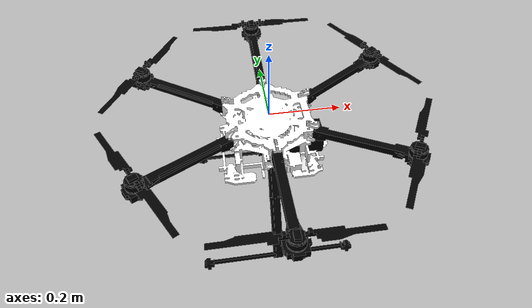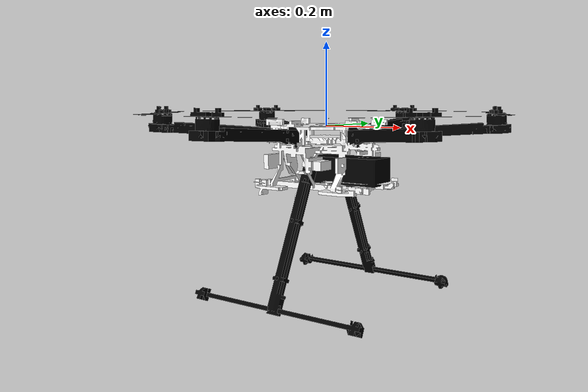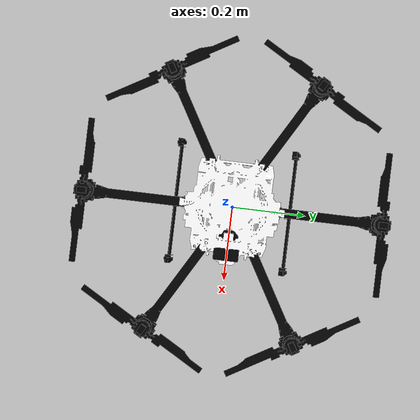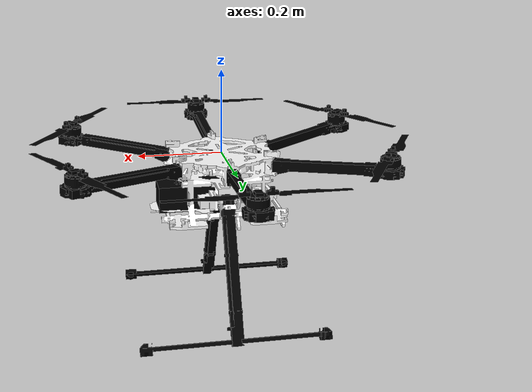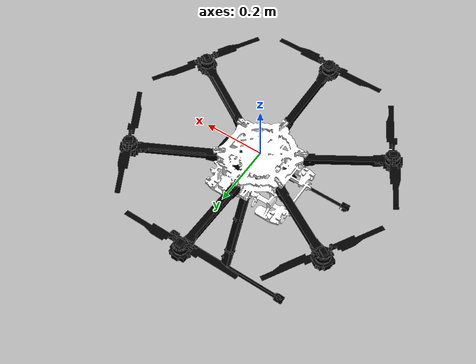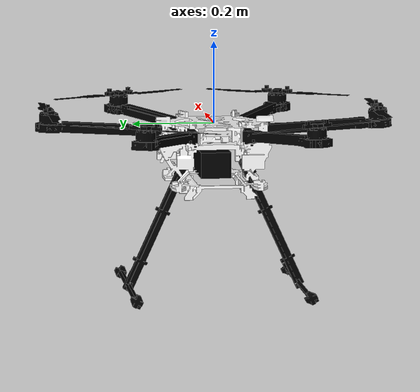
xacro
<robot
  xmlns:xacro="http://ros.org/wiki/xacro" name="s900">

  <!-- Included URDF Files -->
  <xacro:include filename="$(find tobas_description)/urdf/components/multirotor_base.xacro"/>

  <!-- Properties: https://www.dji.com/jp/spreading-wings-s900 -->
  <xacro:property name="center_frame_width" value="0.3"/>
  <xacro:property name="center_frame_height" value="0.15"/>
  <xacro:property name="center_frame_mass" value="1.065"/>
  <xacro:property name="battery_x" value="0.180"/>
  <xacro:property name="battery_y" value="0.070"/>
  <xacro:property name="battery_z" value="0.051"/>
  <xacro:property name="battery_mass" value="1.424"/>
  <xacro:property name="landing_gear_upper_radius" value="0.0125"/>
  <xacro:property name="landing_gear_upper_length" value="0.35"/>
  <xacro:property name="landing_gear_upper_mass" value="0.06"/>
  <xacro:property name="landing_gear_lower_radius" value="0.009"/>
  <xacro:property name="landing_gear_lower_length" value="0.457"/>
  <xacro:property name="landing_gear_lower_mass" value="0.06"/>
  <xacro:property name="arm_offset" value="0.155"/>
  <xacro:property name="arm_radius" value="0.0125"/>
  <xacro:property name="arm_length" value="0.3"/>
  <xacro:property name="arm_mass" value="0.158"/>
  <xacro:property name="motor_radius" value="0.0225"/>
  <xacro:property name="motor_height" value="0.027"/>
  <xacro:property name="motor_mass" value="0.158"/>
  <xacro:property name="propeller_radius" value="0.191"/>
  <xacro:property name="propeller_height" value="0.011"/>
  <xacro:property name="propeller_mass" value="0.013"/>

  <!-- Base Link -->
  <link name="base_link"/>

  <!-- Center Frame -->
  <joint name="center_frame_joint" type="fixed">
    <origin xyz="0 0 0" rpy="0 0 0"/>
    <parent link="base_link"/>
    <child link="center_frame"/>
  </joint>
  <link name="center_frame">
    <visual>
      <origin xyz="0 0 0" rpy="0 0 0"/>
      <geometry>
        <mesh filename="package://tobas_description/meshes/s900/center_frame.stl" scale="1e-3 1e-3 1e-3"/>
      </geometry>
      <xacro:insert_block name="white"/>
    </visual>
    <inertial>
      <mass value="${center_frame_mass}"/>
      <origin xyz="0 0 ${-center_frame_height/2}" rpy="0 0 0"/>
      <xacro:box_inertia x="${center_frame_width}" y="${center_frame_width}" z="${center_frame_height}" mass="${center_frame_mass}"/>
    </inertial>
    <collision>
      <origin xyz="0 0 ${-center_frame_height/2}" rpy="0 0 0"/>
      <geometry>
        <box size="${center_frame_width} ${center_frame_width} ${center_frame_height}"/>
      </geometry>
    </collision>
  </link>

  <!-- Battery -->
  <joint name="battery_joint" type="fixed">
    <origin xyz="0.068 0 -0.103" rpy="0 0 0"/>
    <parent link="base_link"/>
    <child link="battery"/>
  </joint>
  <link name="battery">
    <visual>
      <geometry>
        <mesh filename="package://tobas_description/meshes/s900/battery.stl" scale="1e-3 1e-3 1e-3"/>
      </geometry>
      <xacro:insert_block name="black"/>
    </visual>
    <inertial>
      <mass value="${battery_mass}"/>
      <origin xyz="0 0 0" rpy="0 0 0"/>
      <xacro:box_inertia x="${battery_x}" y="${battery_y}" z="${battery_z}" mass="${battery_mass}"/>
    </inertial>
    <collision>
      <origin xyz="0 0 0" rpy="0 0 0"/>
      <geometry>
        <box size="${battery_x} ${battery_y} ${battery_z}"/>
      </geometry>
    </collision>
  </link>

  <!-- Landing Gears -->
  <xacro:macro name="landing_gear" params="direction suffix">
    <!-- Upper Part -->
    <joint name="landing_gear_${suffix}_upper_joint" type="fixed">
      <origin xyz="0 ${direction*0.068} -0.088" rpy="${direction*24.542*deg2rad} 0 0"/>
      <parent link="base_link"/>
      <child link="landing_gear_${suffix}_upper"/>
    </joint>
    <link name="landing_gear_${suffix}_upper">
      <visual>
        <geometry>
          <mesh filename="package://tobas_description/meshes/s900/landing_gear_upper.stl" scale="1e-3 1e-3 1e-3"/>
        </geometry>
        <xacro:insert_block name="black"/>
      </visual>
      <inertial>
        <mass value="${landing_gear_upper_mass}"/>
        <origin xyz="0 0 ${-landing_gear_upper_length/2}" rpy="0 0 0"/>
        <xacro:cylinder_inertia radius="${landing_gear_upper_radius}" length="${landing_gear_upper_length}" mass="${landing_gear_upper_mass}"/>
      </inertial>
      <collision>
        <origin xyz="0 0 ${-landing_gear_upper_length/2}" rpy="0 0 0"/>
        <geometry>
          <cylinder radius="${landing_gear_upper_radius}" length="${landing_gear_upper_length}"/>
        </geometry>
      </collision>
    </link>

    <!-- Lower Part -->
    <joint name="landing_gear_${suffix}_lower_joint" type="fixed">
      <origin xyz="0 0 -0.344" rpy="0 0 0"/>
      <parent link="landing_gear_${suffix}_upper"/>
      <child link="landing_gear_${suffix}_lower"/>
    </joint>
    <link name="landing_gear_${suffix}_lower">
      <visual>
        <geometry>
          <mesh filename="package://tobas_description/meshes/s900/landing_gear_lower.stl" scale="1e-3 1e-3 1e-3"/>
        </geometry>
        <xacro:insert_block name="black"/>
      </visual>
      <inertial>
        <mass value="${landing_gear_lower_mass}"/>
        <origin xyz="0 0 0" rpy="0 ${pi/2} 0"/>
        <xacro:cylinder_inertia radius="${landing_gear_lower_radius}" length="${landing_gear_lower_length}" mass="${landing_gear_lower_mass}"/>
      </inertial>
      <collision>
        <origin xyz="0 0 0" rpy="0 ${pi/2} 0"/>
        <geometry>
          <cylinder radius="${landing_gear_lower_radius}" length="${landing_gear_lower_length}"/>
        </geometry>
      </collision>
    </link>
  </xacro:macro>

  <xacro:landing_gear direction="1" suffix="left"/>
  <xacro:landing_gear direction="-1" suffix="right"/>

  <!-- Propulsion Systems -->
  <xacro:macro name="propulsion_system" params="index yaw_deg origin_x origin_y direction">
    <!-- Arm -->
    <joint name="arm_${index}_joint" type="fixed">
      <origin xyz="${origin_x} ${origin_y} -0.015" rpy="0 ${-3.238*deg2rad} ${yaw_deg*deg2rad}"/>
      <parent link="base_link"/>
      <child link="arm_${index}"/>
    </joint>
    <link name="arm_${index}">
      <visual>
        <geometry>
          <mesh filename="package://tobas_description/meshes/s900/arm.stl" scale="1e-3 1e-3 1e-3"/>
        </geometry>
        <xacro:insert_block name="black"/>
      </visual>
      <inertial>
        <mass value="${arm_mass}"/>
        <origin xyz="${arm_length/2} 0 0" rpy="0 ${pi/2} 0"/>
        <xacro:cylinder_inertia radius="${arm_radius}" length="${arm_length}" mass="${arm_mass}"/>
      </inertial>
      <collision>
        <origin xyz="${arm_length/2} 0 0" rpy="0 ${pi/2} 0"/>
        <geometry>
          <cylinder radius="${arm_radius}" length="${arm_length}"/>
        </geometry>
      </collision>
    </link>

    <!-- Motor -->
    <joint name="motor_${index}_joint" type="fixed">
      <origin xyz="0.251 0 0.005" rpy="0 0 0"/>
      <parent link="arm_${index}"/>
      <child link="motor_${index}"/>
    </joint>
    <link name="motor_${index}">
      <visual>
        <geometry>
          <mesh filename="package://tobas_description/meshes/s900/motor.stl" scale="1e-3 1e-3 1e-3"/>
        </geometry>
        <xacro:insert_block name="black"/>
      </visual>
      <inertial>
        <mass value="${motor_mass}"/>
        <origin xyz="0 0 ${motor_height/2}" rpy="0 0 0"/>
        <xacro:cylinder_inertia radius="${motor_radius}" length="${motor_height}" mass="${motor_mass}"/>
      </inertial>
      <collision>
        <origin xyz="0 0 ${motor_height/2}" rpy="0 0 0"/>
        <geometry>
          <cylinder radius="${motor_radius}" length="${motor_height}"/>
        </geometry>
      </collision>
    </link>

    <!-- Propeller -->
    <joint name="propeller_${index}_joint" type="continuous">
      <origin xyz="0 0 ${motor_height}" rpy="0 0 0"/>
      <axis xyz="0 0 1"/>
      <parent link="motor_${index}"/>
      <child link="propeller_${index}"/>
    </joint>
    <link name="propeller_${index}">
      <visual>
        <geometry>
          <mesh filename="package://tobas_description/meshes/s900/propeller_${direction}.stl" scale="1e-3 1e-3 1e-3"/>
        </geometry>
        <xacro:insert_block name="black"/>
      </visual>
      <inertial>
        <mass value="${propeller_mass}"/>
        <origin xyz="0 0 ${propeller_height/2}" rpy="0 0 0"/>
        <xacro:cylinder_inertia radius="${propeller_radius}" length="${propeller_height}" mass="${propeller_mass}"/>
      </inertial>
      <collision>
        <origin xyz="0 0 ${propeller_height/2}" rpy="0 0 0"/>
        <geometry>
          <cylinder radius="${propeller_radius}" length="${propeller_height}"/>
        </geometry>
      </collision>
    </link>
  </xacro:macro>

  <xacro:propulsion_system index="0" yaw_deg="30" origin_x="${arm_offset*cos30}" origin_y="${arm_offset*sin30}" direction="ccw"/>
  <xacro:propulsion_system index="1" yaw_deg="90" origin_x="0" origin_y="${arm_offset}" direction="cw"/>
  <xacro:propulsion_system index="2" yaw_deg="150" origin_x="${-arm_offset*cos30}" origin_y="${arm_offset*sin30}" direction="ccw"/>
  <xacro:propulsion_system index="3" yaw_deg="210" origin_x="${-arm_offset*cos30}" origin_y="${-arm_offset*sin30}" direction="cw"/>
  <xacro:propulsion_system index="4" yaw_deg="270" origin_x="0" origin_y="${-arm_offset}" direction="ccw"/>
  <xacro:propulsion_system index="5" yaw_deg="330" origin_x="${arm_offset*cos30}" origin_y="${-arm_offset*sin30}" direction="cw"/>

</robot>

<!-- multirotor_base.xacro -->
<robot xmlns:xacro="http://ros.org/wiki/xacro">

  <xacro:include filename="$(find tobas_description)/urdf/components/common.xacro"/>

  <!-- Main multirotor link -->
  <xacro:macro name="multirotor_base_macro" params="
      robot_namespace
      mass
      body_width
      body_height
      use_mesh_file
      mesh_file
      *inertia">
    <link name="${robot_namespace}/base_link"></link>

    <joint name="${robot_namespace}/base_joint" type="fixed">
      <origin xyz="0 0 0" rpy="0 0 0"/>
      <parent link="${robot_namespace}/base_link"/>
      <child link="${robot_namespace}/base_link_inertia"/>
    </joint>

    <link name="${robot_namespace}/base_link_inertia">
      <inertial>
        <mass value="${mass}"/>
        <origin xyz="0 0 0"/>
        <xacro:insert_block name="inertia"/>
      </inertial>

      <visual>
        <origin xyz="0 0 0" rpy="0 0 0"/>
        <geometry>
          <xacro:if value="${use_mesh_file}">
            <mesh filename="${mesh_file}" scale="1 1 1"/>
          </xacro:if>
          <xacro:unless value="${use_mesh_file}">
            <box size="${body_width} ${body_width} ${body_height}"/>
          </xacro:unless>
        </geometry>
      </visual>

      <collision>
        <origin xyz="0 0 0" rpy="0 0 0"/>
        <geometry>
          <box size="${body_width} ${body_width} ${body_height}"/>
        </geometry>
      </collision>
    </link>
  </xacro:macro>

  <!-- Rotor joint and link -->
  <xacro:macro name="vertical_rotor" params="
      robot_namespace
      direction
      parent
      mass_rotor
      radius_rotor
      motor_number
      use_own_mesh
      mesh
      *origin
      *inertia
      *material">
    <joint name="${robot_namespace}/rotor_${motor_number}_joint" type="continuous">
      <xacro:insert_block name="origin"/>
      <axis xyz="0 0 1"/>
      <parent link="${parent}"/>
      <child link="${robot_namespace}/rotor_${motor_number}"/>
    </joint>

    <link name="${robot_namespace}/rotor_${motor_number}">
      <inertial>
        <mass value="${mass_rotor}"/>
        <xacro:insert_block name="inertia"/>
      </inertial>
      <visual>
        <geometry>
          <xacro:if value="${use_own_mesh}">
            <mesh filename="${mesh}" scale="1 1 1"/>
          </xacro:if>
          <xacro:unless value="${use_own_mesh}">
            <mesh filename="package://tobas_description/meshes/propeller_${direction}.dae" scale="${radius_rotor} ${radius_rotor} ${radius_rotor}"/>
          </xacro:unless>
        </geometry>
        <xacro:insert_block name="material"/>
      </visual>
      <collision>
        <geometry>
          <cylinder length="0.005" radius="${radius_rotor}"/>
        </geometry>
      </collision>
    </link>
  </xacro:macro>

  <!-- Virtual frame for visualization -->
  <xacro:macro name="virtual_frame" params="parent name *origin">
    <joint name="${name}_joint" type="fixed">
      <xacro:insert_block name="origin"/>
      <parent link="${parent}"/>
      <child link="${name}_link"/>
    </joint>

    <link name="${name}_link">
      <inertial>
        <mass value="1e-9"/>
        <inertia ixx="1e-9" ixy="0" ixz="0" iyy="1e-9" iyz="0" izz="1e-9"/>
      </inertial>
      <visual>
        <geometry>
          <box size="1e-3 1e-3 1e-3"/>
        </geometry>
        <xacro:insert_block name="red"/>
      </visual>
      <collision>
        <geometry>
          <box size="1e-3 1e-3 1e-3"/>
        </geometry>
      </collision>
    </link>
  </xacro:macro>

</robot>

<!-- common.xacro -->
<robot xmlns:xacro="http://ros.org/wiki/xacro">

  <!-- Constants -->
  <xacro:property name="sqrt2" value="1.4142135623730951"/>
  <xacro:property name="sqrt3" value="1.73205080757"/>
  <xacro:property name="sin30" value="0.5"/>
  <xacro:property name="cos30" value="${sqrt3 / 2}"/>
  <xacro:property name="sin45" value="${1 / sqrt2}"/>
  <xacro:property name="cos45" value="${sin45}"/>
  <xacro:property name="sin60" value="${cos30}"/>
  <xacro:property name="cos60" value="${sin30}"/>
  <xacro:property name="deg2rad" value="${pi / 180}"/>
  <xacro:property name="rad2deg" value="${180 / pi}"/>
  <xacro:property name="inch2meter" value="0.0254"/>

  <!-- Colors -->
  <xacro:property name="black">
    <material name="black">
      <color rgba="0 0 0 1"/>
    </material>
  </xacro:property>
  <xacro:property name="white">
    <material name="white">
      <color rgba="1 1 1 1"/>
    </material>
  </xacro:property>
  <xacro:property name="gray">
    <material name="gray">
      <color rgba="0.5 0.5 0.5 1"/>
    </material>
  </xacro:property>
  <xacro:property name="red">
    <material name="red">
      <color rgba="1 0 0 1"/>
    </material>
  </xacro:property>
  <xacro:property name="green">
    <material name="green">
      <color rgba="0 1 0 1"/>
    </material>
  </xacro:property>
  <xacro:property name="blue">
    <material name="blue">
      <color rgba="0 0 1 1"/>
    </material>
  </xacro:property>
  <xacro:property name="yellow">
    <material name="yellow">
      <color rgba="1 1 0 1"/>
    </material>
  </xacro:property>
  <xacro:property name="orange">
    <material name="orange">
      <color rgba="${255/255} ${108/255} ${10/255} 1"/>
    </material>
  </xacro:property>
  <xacro:property name="brown">
    <material name="brown">
      <color rgba="${222/255} ${207/255} ${195/255} 1"/>
    </material>
  </xacro:property>

  <!-- Collisions -->
  <xacro:macro name="hexagonal_prism_collision" params="side height x0 y0 z0">
    <collision>
      <origin xyz="${x0} ${y0} ${z0}" rpy="0 0 0"/>
      <geometry>
        <box size="${sqrt3 * side} ${side} ${height}"/>
      </geometry>
    </collision>
    <collision>
      <origin xyz="${x0} ${y0} ${z0}" rpy="0 0 ${60*deg2rad}"/>
      <geometry>
        <box size="${sqrt3 * side} ${side} ${height}"/>
      </geometry>
    </collision>
    <collision>
      <origin xyz="${x0} ${y0} ${z0}" rpy="0 0 ${-60*deg2rad}"/>
      <geometry>
        <box size="${sqrt3 * side} ${side} ${height}"/>
      </geometry>
    </collision>
  </xacro:macro>

  <!-- Inertia wrt. CoM of primitive shapes -->
  <xacro:macro name="box_inertia" params="x y z mass">
    <inertia ixx="${mass * (y*y + z*z) / 12}" ixy="0.0" ixz="0.0" iyy="${mass * (x*x + z*z) / 12}" iyz="0.0" izz="${mass * (x*x + y*y) / 12}"/>
  </xacro:macro>
  <xacro:macro name="cylinder_inertia" params="radius length mass">
    <inertia ixx="${mass*radius*radius/4 + mass*length*length/12}" ixy="0.0" ixz="0.0" iyy="${mass*radius*radius/4 + mass*length*length/12}" iyz="0.0" izz="${mass*radius*radius/2}"/>
  </xacro:macro>
  <xacro:macro name="sphere_inertia" params="radius mass">
    <inertia ixx="${0.4 * mass * radius*radius}" ixy="0.0" ixz="0.0" iyy="${0.4 * mass * radius*radius}" iyz="0.0" izz="${0.4 * mass * radius*radius}"/>
  </xacro:macro>

  <!-- Macro for the inertial properties of a box -->
  <xacro:macro name="box_inertial" params="x y z mass *origin">
    <inertial>
      <mass value="${mass}"/>
      <xacro:insert_block name="origin"/>
      <xacro:box_inertia x="${x}" y="${y}" z="${z}" mass="${mass}"/>
    </inertial>
  </xacro:macro>

</robot>
